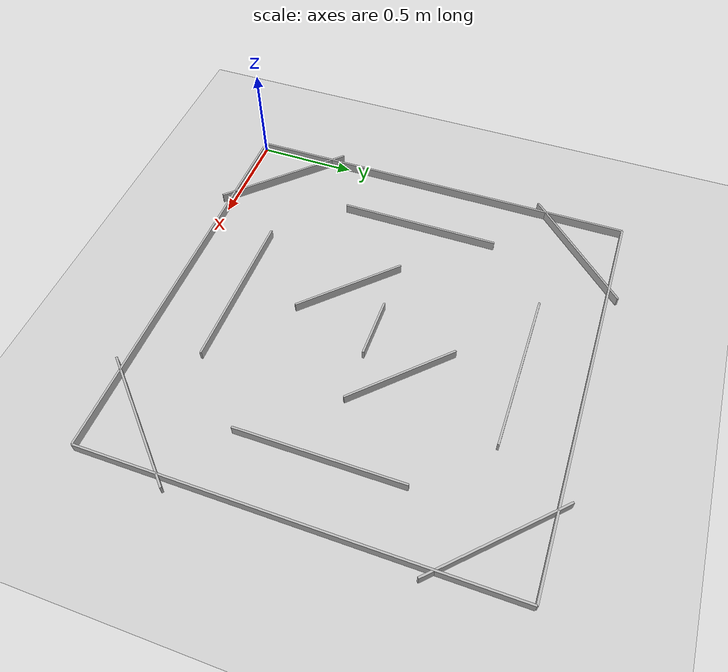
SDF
<?xml version="1.0" ?>
<sdf version="1.6">
  <world name="default">
    <physics type="ode">
      <gravity>0 0 -9.8</gravity>
      <ode>
        <solver>
          <type>quick</type>
          <iters>20</iters>
          <sor>1.0</sor>
        </solver>
        <constraints>
          <cfm>0.0</cfm>
          <erp>0.2</erp>
          <contact_max_correcting_vel>100.0</contact_max_correcting_vel>
          <contact_surface_layer>0.0</contact_surface_layer>
        </constraints>
      </ode>
      <max_step_size>0.001</max_step_size>
    </physics>
    <!-- A global light source -->
    <include>
      <uri>model://sun</uri>
    </include>
    <!-- A ground plane -->
    <include>
      <uri>model://ground_plane</uri>
    </include>

    <!-- A Wall -->
    <model name='wall_00'>
      <static>1</static>
      <link name='link'>
        <visual name='visual'>
          <geometry>
            <box>
              <size>2.0  0.01  0.05</size>
            </box>
          </geometry>
        </visual>
        <self_collide>0</self_collide>
        <kinematic>0</kinematic>
        <collision name='surface'>
          <pose frame=''>0 0 0 0 0 0</pose>
          <geometry>
            <box>
              <size>2.0  0.01  0.05</size>
            </box>
          </geometry>
          <surface>
            <friction>
              <ode>
                <mu>0.6</mu>
                <mu2>0.6</mu2>
              </ode>
              <torsional>
                <ode/>
              </torsional>
            </friction>
            <contact>
              <ode/>
            </contact>
            <bounce/>
          </surface>
          <max_contacts>10</max_contacts>
        </collision>
      </link>
      <pose frame=''>0.0 1.0 0.025000 0 0 1.570796</pose>
    </model>

    <!-- A Wall -->
    <model name='wall_01'>
      <static>1</static>
      <link name='link'>
        <visual name='visual'>
          <geometry>
            <box>
              <size>2.0  0.01  0.05</size>
            </box>
          </geometry>
        </visual>
        <self_collide>0</self_collide>
        <kinematic>0</kinematic>
        <collision name='surface'>
          <pose frame=''>0 0 0 0 0 0</pose>
          <geometry>
            <box>
              <size>2.0  0.01  0.05</size>
            </box>
          </geometry>
          <surface>
            <friction>
              <ode>
                <mu>0.6</mu>
                <mu2>0.6</mu2>
              </ode>
              <torsional>
                <ode/>
              </torsional>
            </friction>
            <contact>
              <ode/>
            </contact>
            <bounce/>
          </surface>
          <max_contacts>10</max_contacts>
        </collision>
      </link>
      <pose frame=''>1.0 2.0 0.025000 0 0 0.000000</pose>
    </model>

    <!-- A Wall -->
    <model name='wall_02'>
      <static>1</static>
      <link name='link'>
        <visual name='visual'>
          <geometry>
            <box>
              <size>2.0  0.01  0.05</size>
            </box>
          </geometry>
        </visual>
        <self_collide>0</self_collide>
        <kinematic>0</kinematic>
        <collision name='surface'>
          <pose frame=''>0 0 0 0 0 0</pose>
          <geometry>
            <box>
              <size>2.0  0.01  0.05</size>
            </box>
          </geometry>
          <surface>
            <friction>
              <ode>
                <mu>0.6</mu>
                <mu2>0.6</mu2>
              </ode>
              <torsional>
                <ode/>
              </torsional>
            </friction>
            <contact>
              <ode/>
            </contact>
            <bounce/>
          </surface>
          <max_contacts>10</max_contacts>
        </collision>
      </link>
      <pose frame=''>2.0 1.0 0.025000 0 0 -1.570796</pose>
    </model>

    <!-- A Wall -->
    <model name='wall_03'>
      <static>1</static>
      <link name='link'>
        <visual name='visual'>
          <geometry>
            <box>
              <size>2.0  0.01  0.05</size>
            </box>
          </geometry>
        </visual>
        <self_collide>0</self_collide>
        <kinematic>0</kinematic>
        <collision name='surface'>
          <pose frame=''>0 0 0 0 0 0</pose>
          <geometry>
            <box>
              <size>2.0  0.01  0.05</size>
            </box>
          </geometry>
          <surface>
            <friction>
              <ode>
                <mu>0.6</mu>
                <mu2>0.6</mu2>
              </ode>
              <torsional>
                <ode/>
              </torsional>
            </friction>
            <contact>
              <ode/>
            </contact>
            <bounce/>
          </surface>
          <max_contacts>10</max_contacts>
        </collision>
      </link>
      <pose frame=''>1.0 0.0 0.025000 0 0 3.141593</pose>
    </model>

    <!-- A Wall -->
    <model name='wall_04'>
      <static>1</static>
      <link name='link'>
        <visual name='visual'>
          <geometry>
            <box>
              <size>0.707106781187  0.01  0.05</size>
            </box>
          </geometry>
        </visual>
        <self_collide>0</self_collide>
        <kinematic>0</kinematic>
        <collision name='surface'>
          <pose frame=''>0 0 0 0 0 0</pose>
          <geometry>
            <box>
              <size>0.707106781187  0.01  0.05</size>
            </box>
          </geometry>
          <surface>
            <friction>
              <ode>
                <mu>0.6</mu>
                <mu2>0.6</mu2>
              </ode>
              <torsional>
                <ode/>
              </torsional>
            </friction>
            <contact>
              <ode/>
            </contact>
            <bounce/>
          </surface>
          <max_contacts>10</max_contacts>
        </collision>
      </link>
      <pose frame=''>0.2 0.2 0.025000 0 0 2.356194</pose>
    </model>

    <!-- A Wall -->
    <model name='wall_05'>
      <static>1</static>
      <link name='link'>
        <visual name='visual'>
          <geometry>
            <box>
              <size>0.707106781187  0.01  0.05</size>
            </box>
          </geometry>
        </visual>
        <self_collide>0</self_collide>
        <kinematic>0</kinematic>
        <collision name='surface'>
          <pose frame=''>0 0 0 0 0 0</pose>
          <geometry>
            <box>
              <size>0.707106781187  0.01  0.05</size>
            </box>
          </geometry>
          <surface>
            <friction>
              <ode>
                <mu>0.6</mu>
                <mu2>0.6</mu2>
              </ode>
              <torsional>
                <ode/>
              </torsional>
            </friction>
            <contact>
              <ode/>
            </contact>
            <bounce/>
          </surface>
          <max_contacts>10</max_contacts>
        </collision>
      </link>
      <pose frame=''>0.2 1.8 0.025000 0 0 0.785398</pose>
    </model>

    <!-- A Wall -->
    <model name='wall_06'>
      <static>1</static>
      <link name='link'>
        <visual name='visual'>
          <geometry>
            <box>
              <size>0.707106781187  0.01  0.05</size>
            </box>
          </geometry>
        </visual>
        <self_collide>0</self_collide>
        <kinematic>0</kinematic>
        <collision name='surface'>
          <pose frame=''>0 0 0 0 0 0</pose>
          <geometry>
            <box>
              <size>0.707106781187  0.01  0.05</size>
            </box>
          </geometry>
          <surface>
            <friction>
              <ode>
                <mu>0.6</mu>
                <mu2>0.6</mu2>
              </ode>
              <torsional>
                <ode/>
              </torsional>
            </friction>
            <contact>
              <ode/>
            </contact>
            <bounce/>
          </surface>
          <max_contacts>10</max_contacts>
        </collision>
      </link>
      <pose frame=''>1.8 1.8 0.025000 0 0 -0.785398</pose>
    </model>

    <!-- A Wall -->
    <model name='wall_07'>
      <static>1</static>
      <link name='link'>
        <visual name='visual'>
          <geometry>
            <box>
              <size>0.707106781187  0.01  0.05</size>
            </box>
          </geometry>
        </visual>
        <self_collide>0</self_collide>
        <kinematic>0</kinematic>
        <collision name='surface'>
          <pose frame=''>0 0 0 0 0 0</pose>
          <geometry>
            <box>
              <size>0.707106781187  0.01  0.05</size>
            </box>
          </geometry>
          <surface>
            <friction>
              <ode>
                <mu>0.6</mu>
                <mu2>0.6</mu2>
              </ode>
              <torsional>
                <ode/>
              </torsional>
            </friction>
            <contact>
              <ode/>
            </contact>
            <bounce/>
          </surface>
          <max_contacts>10</max_contacts>
        </collision>
      </link>
      <pose frame=''>1.8 0.2 0.025000 0 0 -2.356194</pose>
    </model>

    <!-- A Wall -->
    <model name='wall_08'>
      <static>1</static>
      <link name='link'>
        <visual name='visual'>
          <geometry>
            <box>
              <size>0.8  0.01  0.05</size>
            </box>
          </geometry>
        </visual>
        <self_collide>0</self_collide>
        <kinematic>0</kinematic>
        <collision name='surface'>
          <pose frame=''>0 0 0 0 0 0</pose>
          <geometry>
            <box>
              <size>0.8  0.01  0.05</size>
            </box>
          </geometry>
          <surface>
            <friction>
              <ode>
                <mu>0.6</mu>
                <mu2>0.6</mu2>
              </ode>
              <torsional>
                <ode/>
              </torsional>
            </friction>
            <contact>
              <ode/>
            </contact>
            <bounce/>
          </surface>
          <max_contacts>10</max_contacts>
        </collision>
      </link>
      <pose frame=''>0.3 1.0 0.025000 0 0 1.570796</pose>
    </model>

    <!-- A Wall -->
    <model name='wall_09'>
      <static>1</static>
      <link name='link'>
        <visual name='visual'>
          <geometry>
            <box>
              <size>0.8  0.01  0.05</size>
            </box>
          </geometry>
        </visual>
        <self_collide>0</self_collide>
        <kinematic>0</kinematic>
        <collision name='surface'>
          <pose frame=''>0 0 0 0 0 0</pose>
          <geometry>
            <box>
              <size>0.8  0.01  0.05</size>
            </box>
          </geometry>
          <surface>
            <friction>
              <ode>
                <mu>0.6</mu>
                <mu2>0.6</mu2>
              </ode>
              <torsional>
                <ode/>
              </torsional>
            </friction>
            <contact>
              <ode/>
            </contact>
            <bounce/>
          </surface>
          <max_contacts>10</max_contacts>
        </collision>
      </link>
      <pose frame=''>1.0 1.7 0.025000 0 0 0.000000</pose>
    </model>

    <!-- A Wall -->
    <model name='wall_10'>
      <static>1</static>
      <link name='link'>
        <visual name='visual'>
          <geometry>
            <box>
              <size>0.8  0.01  0.05</size>
            </box>
          </geometry>
        </visual>
        <self_collide>0</self_collide>
        <kinematic>0</kinematic>
        <collision name='surface'>
          <pose frame=''>0 0 0 0 0 0</pose>
          <geometry>
            <box>
              <size>0.8  0.01  0.05</size>
            </box>
          </geometry>
          <surface>
            <friction>
              <ode>
                <mu>0.6</mu>
                <mu2>0.6</mu2>
              </ode>
              <torsional>
                <ode/>
              </torsional>
            </friction>
            <contact>
              <ode/>
            </contact>
            <bounce/>
          </surface>
          <max_contacts>10</max_contacts>
        </collision>
      </link>
      <pose frame=''>1.7 1.0 0.025000 0 0 1.570796</pose>
    </model>

    <!-- A Wall -->
    <model name='wall_11'>
      <static>1</static>
      <link name='link'>
        <visual name='visual'>
          <geometry>
            <box>
              <size>0.8  0.01  0.05</size>
            </box>
          </geometry>
        </visual>
        <self_collide>0</self_collide>
        <kinematic>0</kinematic>
        <collision name='surface'>
          <pose frame=''>0 0 0 0 0 0</pose>
          <geometry>
            <box>
              <size>0.8  0.01  0.05</size>
            </box>
          </geometry>
          <surface>
            <friction>
              <ode>
                <mu>0.6</mu>
                <mu2>0.6</mu2>
              </ode>
              <torsional>
                <ode/>
              </torsional>
            </friction>
            <contact>
              <ode/>
            </contact>
            <bounce/>
          </surface>
          <max_contacts>10</max_contacts>
        </collision>
      </link>
      <pose frame=''>1.0 0.3 0.025000 0 0 0.000000</pose>
    </model>

    <!-- A Wall -->
    <model name='wall_12'>
      <static>1</static>
      <link name='link'>
        <visual name='visual'>
          <geometry>
            <box>
              <size>0.565685424949  0.01  0.05</size>
            </box>
          </geometry>
        </visual>
        <self_collide>0</self_collide>
        <kinematic>0</kinematic>
        <collision name='surface'>
          <pose frame=''>0 0 0 0 0 0</pose>
          <geometry>
            <box>
              <size>0.565685424949  0.01  0.05</size>
            </box>
          </geometry>
          <surface>
            <friction>
              <ode>
                <mu>0.6</mu>
                <mu2>0.6</mu2>
              </ode>
              <torsional>
                <ode/>
              </torsional>
            </friction>
            <contact>
              <ode/>
            </contact>
            <bounce/>
          </surface>
          <max_contacts>10</max_contacts>
        </collision>
      </link>
      <pose frame=''>0.8 0.8 0.025000 0 0 -0.785398</pose>
    </model>

    <!-- A Wall -->
    <model name='wall_13'>
      <static>1</static>
      <link name='link'>
        <visual name='visual'>
          <geometry>
            <box>
              <size>0.565685424949  0.01  0.05</size>
            </box>
          </geometry>
        </visual>
        <self_collide>0</self_collide>
        <kinematic>0</kinematic>
        <collision name='surface'>
          <pose frame=''>0 0 0 0 0 0</pose>
          <geometry>
            <box>
              <size>0.565685424949  0.01  0.05</size>
            </box>
          </geometry>
          <surface>
            <friction>
              <ode>
                <mu>0.6</mu>
                <mu2>0.6</mu2>
              </ode>
              <torsional>
                <ode/>
              </torsional>
            </friction>
            <contact>
              <ode/>
            </contact>
            <bounce/>
          </surface>
          <max_contacts>10</max_contacts>
        </collision>
      </link>
      <pose frame=''>1.2 1.2 0.025000 0 0 -0.785398</pose>
    </model>

    <!-- A Wall -->
    <model name='wall_14'>
      <static>1</static>
      <link name='link'>
        <visual name='visual'>
          <geometry>
            <box>
              <size>0.3  0.01  0.05</size>
            </box>
          </geometry>
        </visual>
        <self_collide>0</self_collide>
        <kinematic>0</kinematic>
        <collision name='surface'>
          <pose frame=''>0 0 0 0 0 0</pose>
          <geometry>
            <box>
              <size>0.3  0.01  0.05</size>
            </box>
          </geometry>
          <surface>
            <friction>
              <ode>
                <mu>0.6</mu>
                <mu2>0.6</mu2>
              </ode>
              <torsional>
                <ode/>
              </torsional>
            </friction>
            <contact>
              <ode/>
            </contact>
            <bounce/>
          </surface>
          <max_contacts>10</max_contacts>
        </collision>
      </link>
      <pose frame=''>1.0 1.0 0.025000 0 0 0.000000</pose>
    </model>

  </world>
</sdf>
